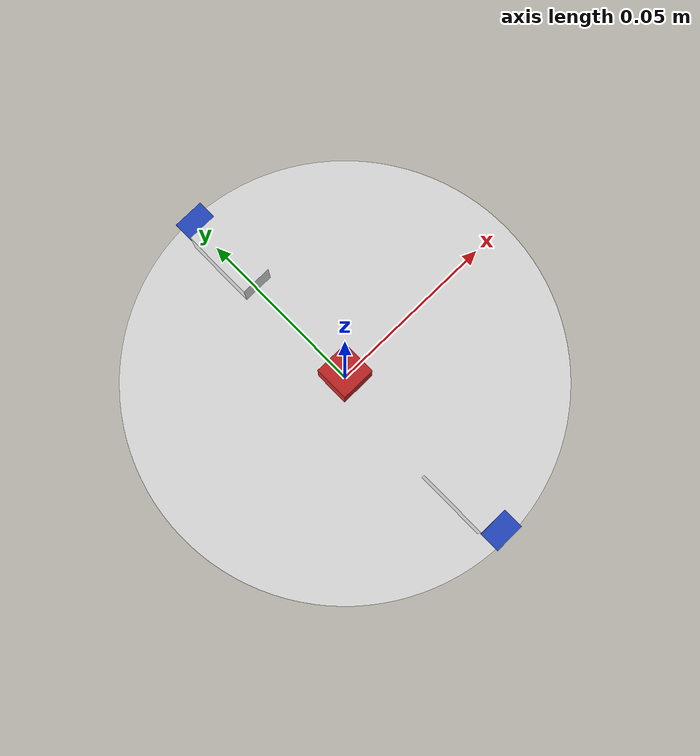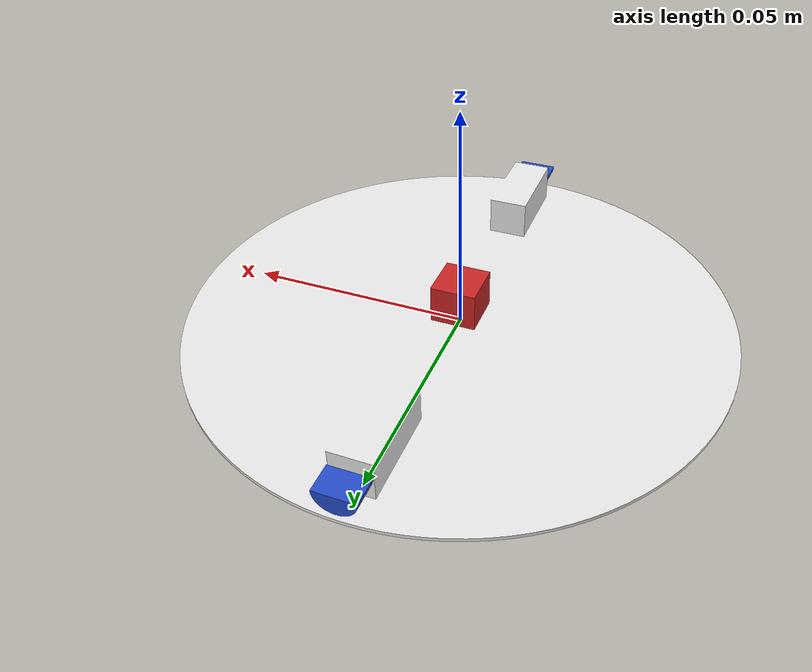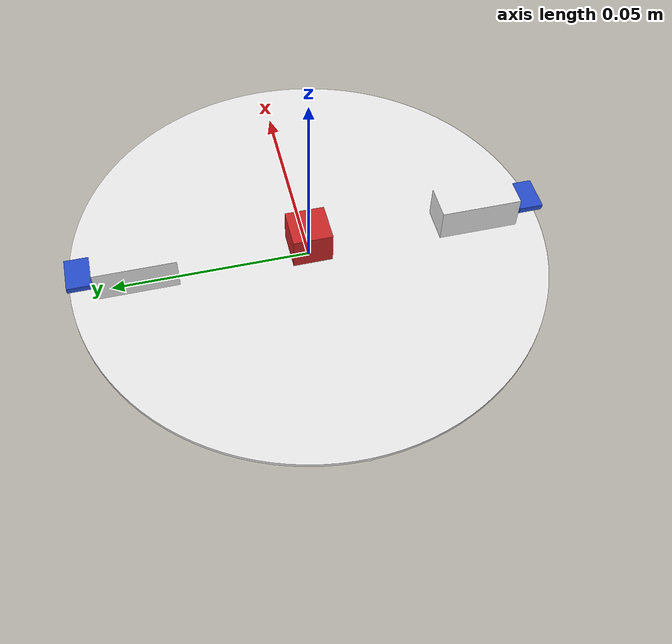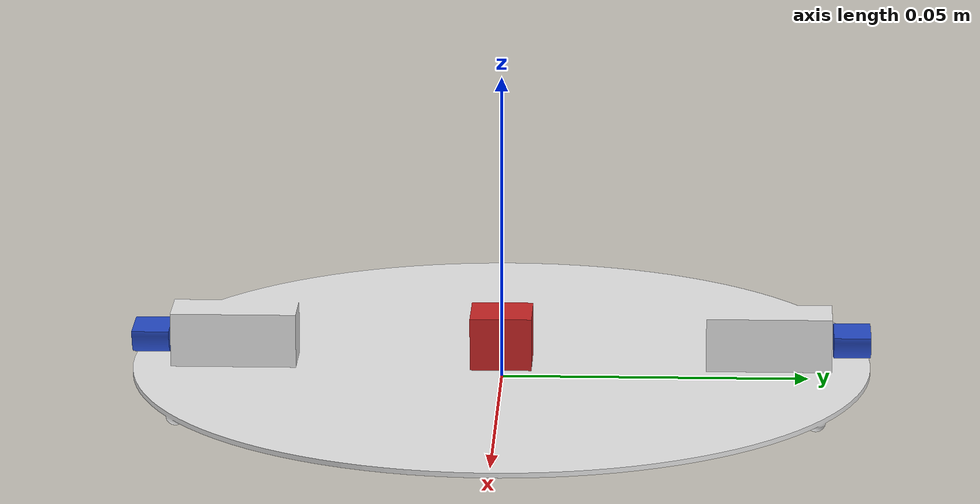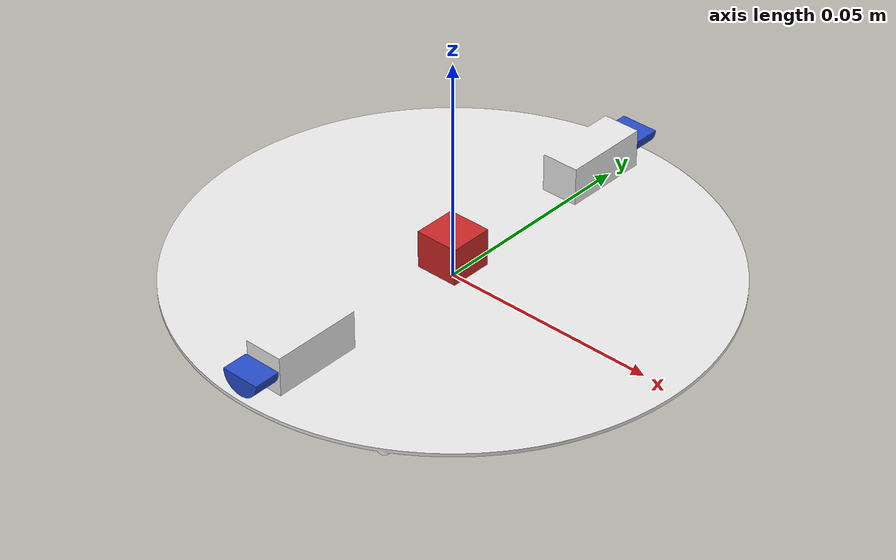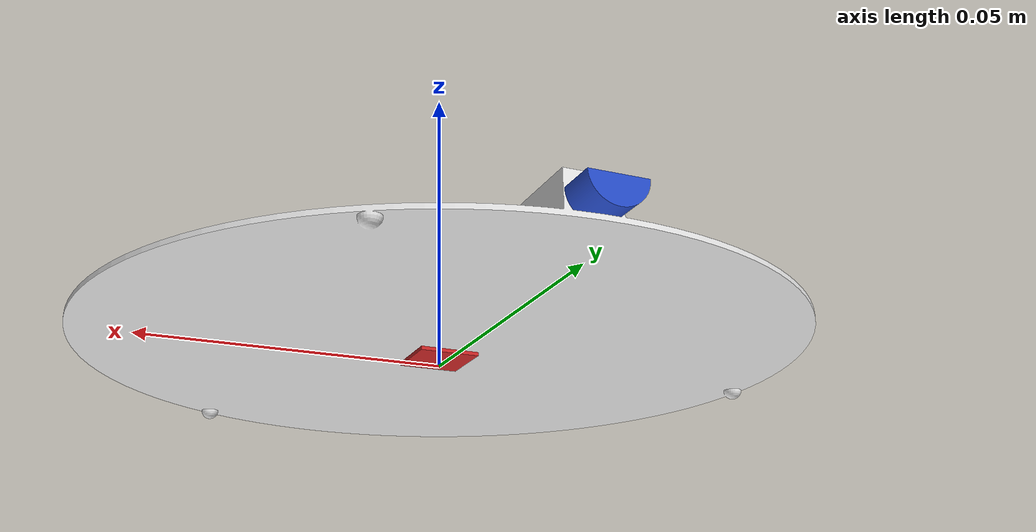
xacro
<?xml version="1.0"?>
<robot name="microrobot" xmlns:xacro="http://www.ros.org/wiki/xacro" >

    <!-- Import all Gazebo-customization elements, including Gazebo colors -->
    <xacro:include filename="microbot.gazebo" />

    <!-- Constants for robot dimensions -->
    <xacro:property name="left_eccenter_position">
        <origin xyz="0 0.057 0.008" rpy="0 0 0" />
    </xacro:property>

    <xacro:property name="right_eccenter_position">
        <origin xyz="0 -0.057 0.008" rpy="0 0 -3.14" />
    </xacro:property>

    <xacro:property name="mesh_offset">
        <origin xyz="0 0 -0.002" rpy="0 0 0" />
    </xacro:property>

    <xacro:property name="camera_link_size" value="0.05" />

    <!-- Base Link -->
    <link name="base_link">
    </link>

    <joint name="platform_joint" type="fixed">
        <parent link="base_link"></parent>
        <child link="platform_link"></child>
    </joint>

    <!-- Platform link -->
    <link name="platform_link">

        <inertial>
            <mass value="122"/>
            <inertia ixx="0.144"  ixy="0"  ixz="0" iyy="0.083" iyz="0" izz="0.225" />
        </inertial>

        <visual>
            <geometry>
                <mesh filename="package://microrobot/meshes/large_platform_mesh_001.stl"/>
            </geometry>
        </visual>

        <collision>
            <geometry>
                <mesh filename="package://microrobot/meshes/large_platform_mesh_001.stl"/>
            </geometry>
        </collision>

    </link>

    <!-- Left eccenter link -->
    <link name="left_eccenter_link">

        <inertial>
            <xacro:insert_block name="mesh_offset" />
            <mass value="1.825"/>
            <inertia ixx="7.94e-06"  ixy="0"  ixz="0" iyy="1.15e-05" iyz="0" izz="1.431e-05" />
        </inertial>

        <visual>
            <xacro:insert_block name="mesh_offset" />
            <geometry>
                <mesh filename="package://microrobot/meshes/large_eccenter_mesh_001.stl"/>
            </geometry>
        </visual>

        <collision>
            <xacro:insert_block name="mesh_offset" />
            <geometry>
                <mesh filename="package://microrobot/meshes/large_eccenter_mesh_001.stl"/>
            </geometry>
        </collision>

    </link>

    <joint name="platform_to_left_eccenter_joint" type="continuous">
        <xacro:insert_block name="left_eccenter_position" />
        <parent link="platform_link"/>
        <child link="left_eccenter_link"/>
        <axis xyz="0 1 0"/>
        <dynamics damping="0.0005" friction="0.0"/>
    </joint>

    <!-- Right eccenter link -->
    <link name="right_eccenter_link">

        <inertial>
            <xacro:insert_block name="mesh_offset" />
            <mass value="1.825"/>
            <inertia ixx="7.94e-06"  ixy="0"  ixz="0" iyy="1.15e-05" iyz="0" izz="1.431e-05" />
        </inertial>

        <visual>
            <xacro:insert_block name="mesh_offset" />
            <geometry>
                <mesh filename="package://microrobot/meshes/large_eccenter_mesh_001.stl"/>
            </geometry>
        </visual>

        <collision>
            <xacro:insert_block name="mesh_offset" />
            <geometry>
                <mesh filename="package://microrobot/meshes/large_eccenter_mesh_001.stl"/>
            </geometry>
        </collision>

    </link>

    <joint name="platform_to_right_eccenter_joint" type="continuous">
        <xacro:insert_block name="right_eccenter_position" />
        <parent link="platform_link" />
        <child link="right_eccenter_link" />
        <axis xyz="0 1 0"/>
        <dynamics damping="0.0005" friction="0.0"/>
    </joint>

    <transmission name="left_motor_transmition">

        <type>transmission_interface/SimpleTransmission</type>

        <joint name="platform_to_left_eccenter_joint">
            <hardwareInterface>hardware_interface/VelocityJointInterface </hardwareInterface>
        </joint>

        <actuator name="l_motor">
            <hardwareInterface>hardware_interface/VelocityJointInterface </hardwareInterface>
            <mechanicalReduction>1</mechanicalReduction>
        </actuator>

    </transmission>

	<transmission name="right_motor_transmition">

        <type>transmission_interface/SimpleTransmission</type>

        <joint name="platform_to_right_eccenter_joint">
            <hardwareInterface>hardware_interface/VelocityJointInterface </hardwareInterface>
        </joint>

        <actuator name="r_motor">
            <hardwareInterface>hardware_interface/VelocityJointInterface </hardwareInterface>
            <mechanicalReduction>1</mechanicalReduction>
        </actuator>

    </transmission>

    <!--IMU : joint , link , sensor  -->

    <link name="imu_link">
        <inertial>
            <mass value="0.001"/>
            <origin rpy="0 0 0" xyz="0 0 0"/>
            <inertia ixx="0.0001" ixy="0" ixz="0" iyy="0.000001" iyz="0" izz="0.0001"/>
        </inertial>
        <visual>
            <origin rpy="0 0 0" xyz="0 0 0"/>
            <geometry>
            <box size="0.01 0.01 0.01"/>
            </geometry>
        </visual>
        <collision>
            <origin rpy="0 0 0" xyz="0 0 0"/>
            <geometry>
            <box size=".01 .01 .01"/>
            </geometry>
        </collision>
    </link>

    <joint name="imu_joint" type="fixed">
        <axis xyz="1 0 0"/>
        <origin xyz="0 0 0.006"/>
        <parent link="platform_link"/>
        <child link="imu_link"/>
    </joint>
</robot>
